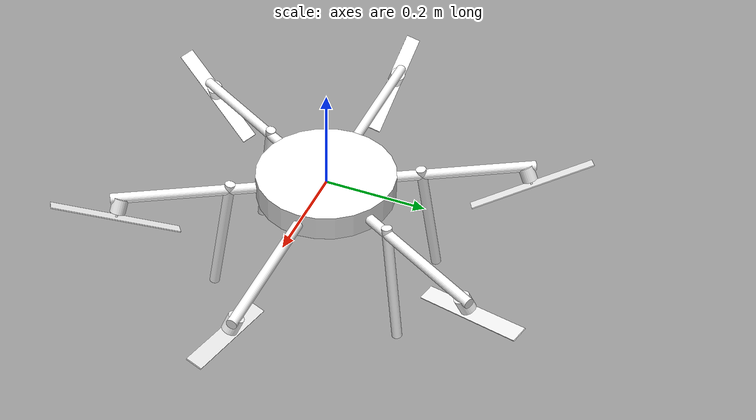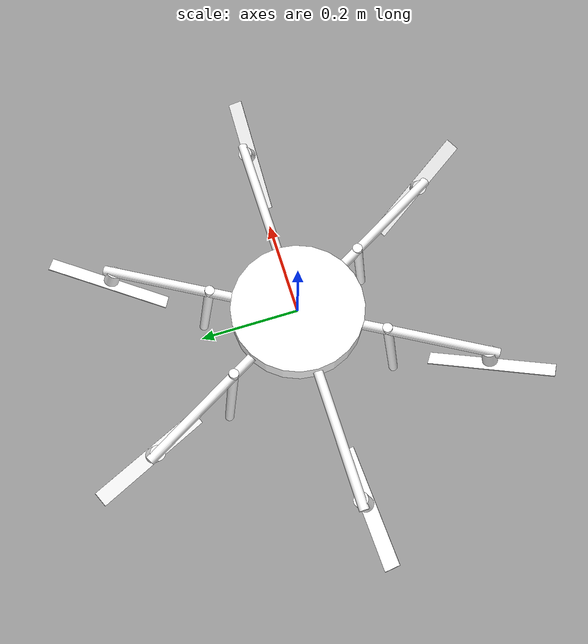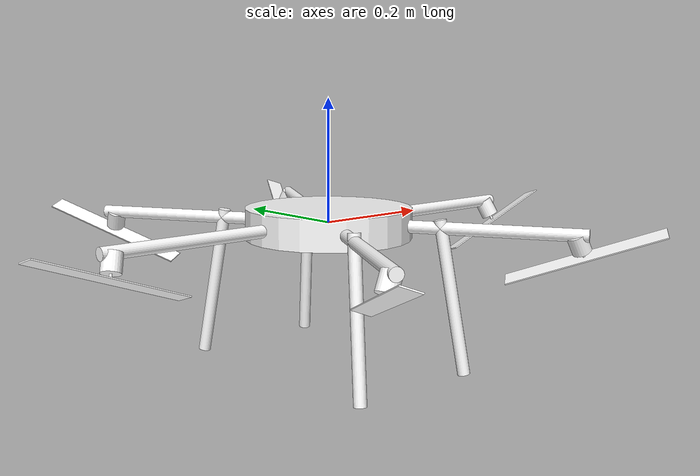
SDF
<?xml version="1.0" ?>

<sdf version="1.5">
  <model name="mrsim-tilthex">
    <link name="base">
      <inertial>
        <mass>2.3</mass>
        <inertia>
          <ixx>0.0115</ixx><ixy>0</ixy><ixz>0</ixz>
          <iyy>0.0114</iyy><iyz>0</iyz>
          <izz>0.0194</izz>
        </inertia>
      </inertial>

      <collision name="base">
	<pose>0 0 -0.05 0 0 0</pose>
        <geometry>
          <cylinder><radius>0.1354</radius><length>0.15</length></cylinder>
        </geometry>
      </collision>
      <!-- three spheres to make contact stable -->
      <collision name="land_1">
        <pose>0.2 0 -0.21 0 0 0</pose>
        <geometry>
          <sphere><radius>0.03</radius></sphere>
        </geometry>
      </collision>
      <collision name="land_2">
        <pose>-0.1 0.173 -0.21 0 0 0</pose>
        <geometry>
          <sphere><radius>0.03</radius></sphere>
        </geometry>
      </collision>
      <collision name="land_3">
        <pose>-0.1 -0.173 -0.21 0 0 0</pose>
        <geometry>
          <sphere><radius>0.03</radius></sphere>
        </geometry>
      </collision>

      <visual name="body">
        <geometry>
          <cylinder><radius>0.1354</radius><length>0.05</length></cylinder>
        </geometry>
        <material>
          <ambient>0 0 0.75 1</ambient>
          <diffuse>1.0 1.0 1.0 1</diffuse>
        </material>
      </visual>

      <visual name="train_1">
	<pose>0.1025 0.1776 -0.11 3.1416 -0.1736 1.0472</pose>
        <geometry>
          <cylinder><radius>0.01</radius><length>0.25</length></cylinder>
        </geometry>
        <material>
          <ambient>0 0 0 1.0</ambient>
          <diffuse>1.0 1.0 1.0 1</diffuse>
        </material>
      </visual>

      <visual name="train_2">
	<pose>-0.1025 0.1776 -0.11 3.1416 -0.1736 2.0944</pose>
        <geometry>
          <cylinder><radius>0.01</radius><length>0.25</length></cylinder>
        </geometry>
        <material>
          <ambient>0 0 0 1.0</ambient>
          <diffuse>1.0 1.0 1.0 1</diffuse>
        </material>
      </visual>

     <visual name="train_3">
	<pose>-0.1025 -0.1776 -0.11 3.1416 0.1736 1.0472</pose>
        <geometry>
          <cylinder><radius>0.01</radius><length>0.25</length></cylinder>
        </geometry>
        <material>
          <ambient>0 0 0 1.0</ambient>
          <diffuse>1.0 1.0 1.0 1</diffuse>
        </material>
      </visual>

     <visual name="train_4">
	<pose>0.1025 -0.1776 -0.11 3.1416 0.1736 2.0944</pose>
        <geometry>
          <cylinder><radius>0.01</radius><length>0.25</length></cylinder>
        </geometry>
        <material>
          <ambient>0 0 0 1.0</ambient>
          <diffuse>1.0 1.0 1.0 1</diffuse>
        </material>
      </visual>

      <visual name="arm-1">
        <pose>0.2150 0 0 0 1.5708 0</pose>
        <geometry>
          <cylinder><radius>0.01</radius><length>0.38998</length></cylinder>
        </geometry>
        <material>
          <ambient>1.0 0 0 0</ambient>
          <diffuse>1.0 1.0 1.0 1</diffuse>
        </material>
      </visual>
      <visual name="arm-2">
        <pose>0.1025 0.1776 0 0 1.5708 1.0472</pose>
        <geometry>
          <cylinder><radius>0.01</radius><length>0.40998</length></cylinder>
        </geometry>
        <material>
          <ambient>0.6 0.6 0.6 1</ambient>
          <diffuse>1.0 1.0 1.0 1</diffuse>
        </material>
      </visual>
      <visual name="arm-3">
        <pose>-0.1025 0.1776 0 0 1.5708 2.0944</pose>
        <geometry>
          <cylinder><radius>0.01</radius><length>0.40998</length></cylinder>
        </geometry>
        <material>
          <ambient>0.6 0.6 0.6 1</ambient>
          <diffuse>1.0 1.0 1.0 1</diffuse>
        </material>
      </visual>
      <visual name="arm-4">
        <pose>-0.2150 0 0 0 1.5708 0</pose>
        <geometry>
          <cylinder><radius>0.01</radius><length>0.38998</length></cylinder>
        </geometry>
        <material>
          <ambient>0.6 0.6 0.6 1</ambient>
          <diffuse>1.0 1.0 1.0 1</diffuse>
        </material>
      </visual>
      <visual name="arm-5">
        <pose>-0.1025 -0.1776 0 0 1.5708 -2.0944</pose>
        <geometry>
          <cylinder><radius>0.01</radius><length>0.40998</length></cylinder>
        </geometry>
        <material>
          <ambient>0.6 0.6 0.6 1</ambient>
          <diffuse>1.0 1.0 1.0 1</diffuse>
        </material>
      </visual>
      <visual name="arm-6">
        <pose>0.1025 -0.1776 0 0 1.5708 -1.0472</pose>
        <geometry>
          <cylinder><radius>0.01</radius><length>0.40998</length></cylinder>
        </geometry>
        <material>
          <ambient>0.6 0.6 0.6 1</ambient>
          <diffuse>1.0 1.0 1.0 1</diffuse>
        </material>
      </visual>
    </link>

    <include>
      <uri>model://mrsim-rotor</uri>
      <name>rotor-1</name>
      <pose>0.38998 0 0 2.7925 -0.3491 0</pose>
    </include>
    <joint name="rotor-1" type="revolute">
      <parent>base</parent>
      <child>rotor-1::propeller</child>
      <axis><xyz>0 0 -1</xyz></axis>
    </joint>

    <include>
      <uri>model://mrsim-rotor</uri>
      <name>rotor-2</name>
      <pose>0.195 0.3377 0 -2.7925 -0.3491 1.0472</pose>
    </include>
    <joint name="rotor-2" type="revolute">
      <parent>base</parent>
      <child>rotor-2::propeller</child>
      <axis><xyz>0 0 -1</xyz></axis>
    </joint>

    <include>
      <uri>model://mrsim-rotor</uri>
      <name>rotor-3</name>
      <pose>-0.195 0.3377 0 2.7925 -0.3491 2.0944</pose>
    </include>
    <joint name="rotor-3" type="revolute">
      <parent>base</parent>
      <child>rotor-3::propeller</child>
      <axis><xyz>0 0 -1</xyz></axis>
    </joint>

    <include>
      <uri>model://mrsim-rotor</uri>
      <name>rotor-4</name>
      <pose>-0.38998 0 0 -3.4907 0.3491 0</pose>
    </include>
    <joint name="rotor-4" type="revolute">
      <parent>base</parent>
      <child>rotor-4::propeller</child>
      <axis><xyz>0 0 -1</xyz></axis>
    </joint>

    <include>
      <uri>model://mrsim-rotor</uri>
      <name>rotor-5</name>
      <pose>-0.195 -0.3377 0 -2.7925 0.3491 1.0472</pose>
    </include>
    <joint name="rotor-5" type="revolute">
      <parent>base</parent>
      <child>rotor-5::propeller</child>
      <axis><xyz>0 0 -1</xyz></axis>
    </joint>

    <include>
      <uri>model://mrsim-rotor</uri>
      <name>rotor-6</name>
      <pose>0.195 -0.3377 0 2.7925 0.3491 2.0944</pose>
    </include>
    <joint name="rotor-6" type="revolute">
      <parent>base</parent>
      <child>rotor-6::propeller</child>
      <axis><xyz>0 0 -1</xyz></axis>
    </joint>

    <plugin name="mrsim" filename="mrsim-gazebo.so">
      <link>base</link>
      <rotors>
        <noise>0.03</noise>
        <cf>9.9016e-4</cf>
        <ct>1.9e-5</ct>
        <vfxy>0.5</vfxy><vfz>0.5</vfz>
        <vtxy>0.5</vtxy><vtz>0.5</vtz>

        <rotor><joint spin="cw">rotor-1</joint></rotor>
        <rotor><joint spin="ccw">rotor-2</joint></rotor>
        <rotor><joint spin="cw">rotor-3</joint></rotor>
        <rotor><joint spin="ccw">rotor-4</joint></rotor>
	<rotor><joint spin="cw">rotor-5</joint></rotor>
	<rotor><joint spin="ccw">rotor-6</joint></rotor>
      </rotors>
    </plugin>
</model>
</sdf>

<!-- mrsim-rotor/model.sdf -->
<sdf version="1.5">
  <model name="mrsim-rotor">
    <link name="propeller">
      <inertial>
        <mass>0.07</mass>
        <inertia>
          <ixx>4e-5</ixx><ixy>0</ixy><ixz>0</ixz>
          <iyy>4e-5</iyy><iyz>0</iyz>
          <izz>8e-5</izz>
        </inertia>
      </inertial>

      <collision name="collision">
        <pose>0 0 0.04 0 0 0</pose>
        <geometry>
          <cylinder><radius>0.127</radius><length>0.002</length></cylinder>
        </geometry>
      </collision>

      <visual name="motor">
        <pose>0 0 0.015 0 0 0</pose>
        <geometry>
          <cylinder><radius>0.015</radius><length>0.03</length></cylinder>
        </geometry>
        <material>
          <ambient>0.1 0.1 0.1 1</ambient>
          <diffuse>1.0 1.0 1.0 1</diffuse>
        </material>
      </visual>

      <visual name="axle">
        <pose>0 0 0.035 0 0 0</pose>
        <geometry>
          <cylinder><radius>0.002</radius><length>0.01</length></cylinder>
        </geometry>
        <material>
          <ambient>0.1 0.1 0.1 1</ambient>
          <diffuse>1.0 1.0 1.0 1</diffuse>
        </material>
      </visual>

      <visual name="blade">
        <pose>0 0 0.04 0 0 0</pose>
        <geometry>
          <box><size>0.25 0.03 0.002</size></box>
        </geometry>
        <material>
          <ambient>0.1 0.1 0.1 1</ambient>
          <diffuse>1.0 1.0 1.0 1</diffuse>
        </material>
      </visual>
    </link>
  </model>
</sdf>
